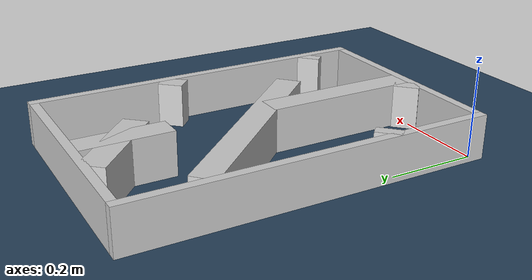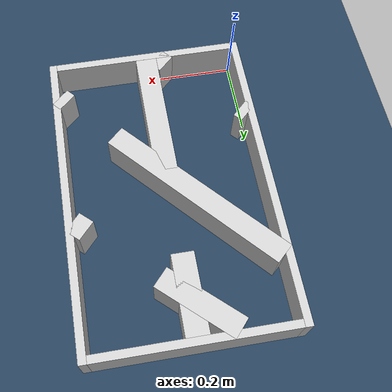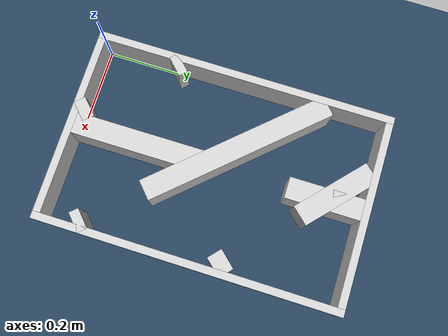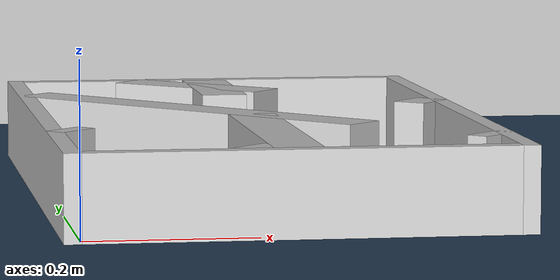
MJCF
<?xml version="1.0" ?>
<mujoco model="generated_real_template">
  <compiler angle="degree"/>
  <option timestep="0.002" integrator="implicitfast" iterations="100" cone="elliptic"/>
  <default>
    <geom density="1"/>
  </default>
  <asset>
    <texture builtin="gradient" height="3072" rgb1="0.3 0.5 0.7" rgb2="0 0 0" type="skybox" width="512"/>
    <texture builtin="checker" height="300" mark="edge" markrgb="0.8 0.8 0.8" name="groundplane" rgb1="0.2 0.3 0.4" rgb2="0.1 0.2 0.3" type="2d" width="300"/>
    <material name="groundplane" reflectance="0.2" texrepeat="5 5" texture="groundplane" texuniform="true"/>
  </asset>
  <worldbody>
    <light dir="0 0 -1" directional="true" pos="0 0 1.5"/>
    <geom name="floor" type="plane" condim="4" friction="0.5 0.005 0.001" material="groundplane" size="0 0 0.05"/>
    <body name="walls">
      <geom name="wall_boundary_left" type="box" condim="4" friction="1.0 0.005 0.0001" rgba="0.8 0.8 0.8 1" pos="-0.010000 0.387500 0.050000" euler="0 0 0.000000" size="0.010000 0.407500 0.050000"/>
      <geom name="wall_boundary_right" type="box" condim="4" friction="1.0 0.005 0.0001" rgba="0.8 0.8 0.8 1" pos="0.500000 0.387500 0.050000" euler="0 0 0.000000" size="0.010000 0.407500 0.050000"/>
      <geom name="wall_boundary_bottom" type="box" condim="4" friction="1.0 0.005 0.0001" rgba="0.8 0.8 0.8 1" pos="0.245000 -0.010000 0.050000" euler="0 0 0.000000" size="0.245000 0.010000 0.050000"/>
      <geom name="wall_boundary_top" type="box" condim="4" friction="1.0 0.005 0.0001" rgba="0.8 0.8 0.8 1" pos="0.245000 0.785000 0.050000" euler="0 0 0.000000" size="0.245000 0.010000 0.050000"/>
      <geom name="wall_inner_1_1" type="box" condim="4" friction="1.0 0.005 0.0001" rgba="0.8 0.8 0.8 1" pos="0.009347 0.209455 0.050000" euler="0 0 -46.004412" size="0.012732 0.028500 0.050000"/>
      <geom name="wall_inner_1_2" type="box" condim="4" friction="1.0 0.005 0.0001" rgba="0.8 0.8 0.8 1" pos="0.200316 0.011670 0.050000" euler="0 0 -46.004412" size="0.016222 0.028500 0.050000"/>
      <geom name="wall_inner_2_1" type="box" condim="4" friction="1.0 0.005 0.0001" rgba="0.8 0.8 0.8 1" pos="0.240661 0.675590 0.050000" euler="0 0 -89.890068" size="0.099410 0.028500 0.050000"/>
      <geom name="wall_inner_2_2" type="box" condim="4" friction="1.0 0.005 0.0001" rgba="0.8 0.8 0.8 1" pos="0.241621 0.175135 0.050000" euler="0 0 -89.890068" size="0.175135 0.028500 0.050000"/>
      <geom name="wall_inner_3_1" type="box" condim="4" friction="1.0 0.005 0.0001" rgba="0.8 0.8 0.8 1" pos="0.474318 0.470699 0.050000" euler="0 0 137.861939" size="0.021148 0.028500 0.050000"/>
      <geom name="wall_inner_3_2" type="box" condim="4" friction="1.0 0.005 0.0001" rgba="0.8 0.8 0.8 1" pos="0.220666 0.700197 0.050000" euler="0 0 137.861939" size="0.109802 0.028500 0.050000"/>
      <geom name="wall_inner_4_1" type="box" condim="4" friction="1.0 0.005 0.0001" rgba="0.8 0.8 0.8 1" pos="0.480072 0.097795 0.050000" euler="0 0 132.583535" size="0.013215 0.028500 0.050000"/>
      <geom name="wall_inner_4_2" type="box" condim="4" friction="1.0 0.005 0.0001" rgba="0.8 0.8 0.8 1" pos="0.179524 0.424827 0.050000" euler="0 0 132.583535" size="0.263852 0.028500 0.050000"/>
    </body>
  </worldbody>
</mujoco>
